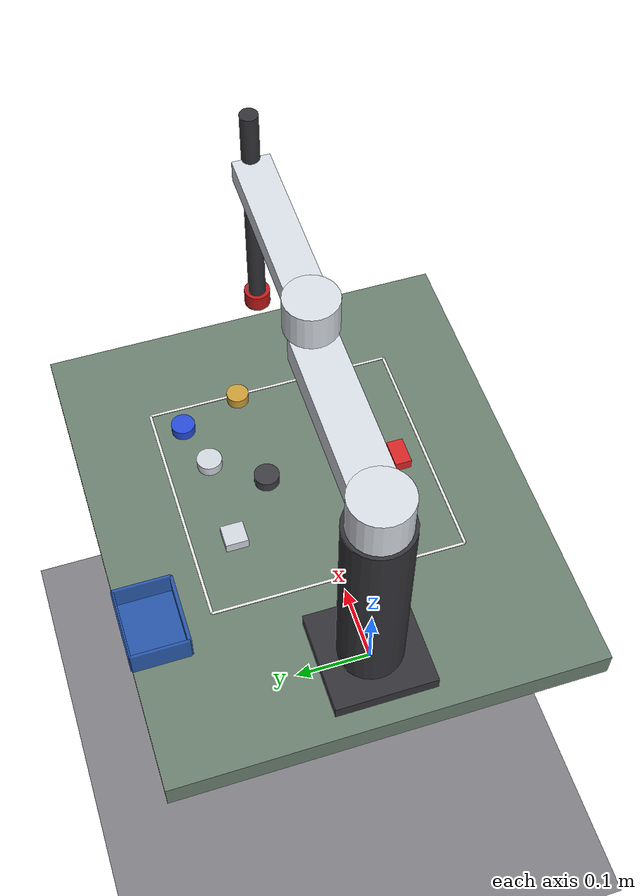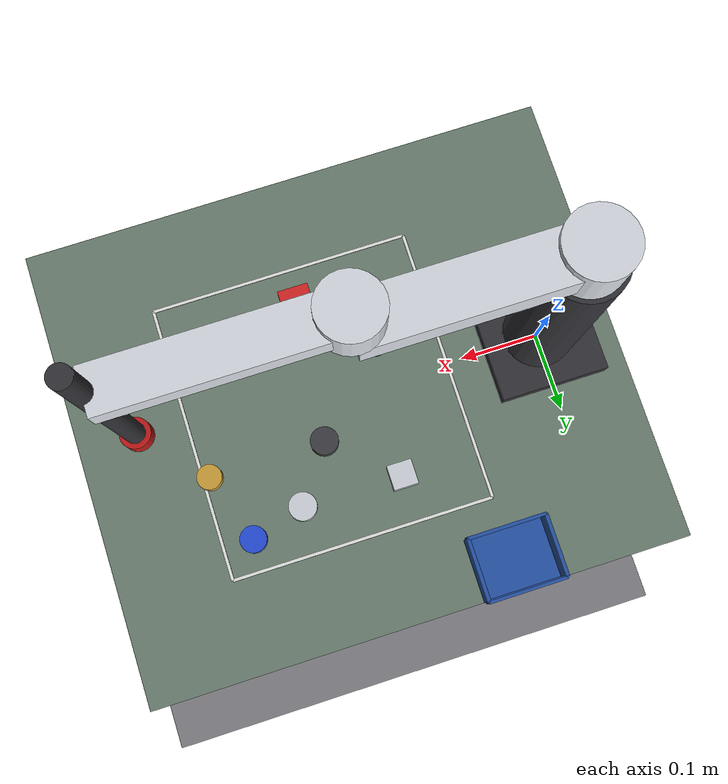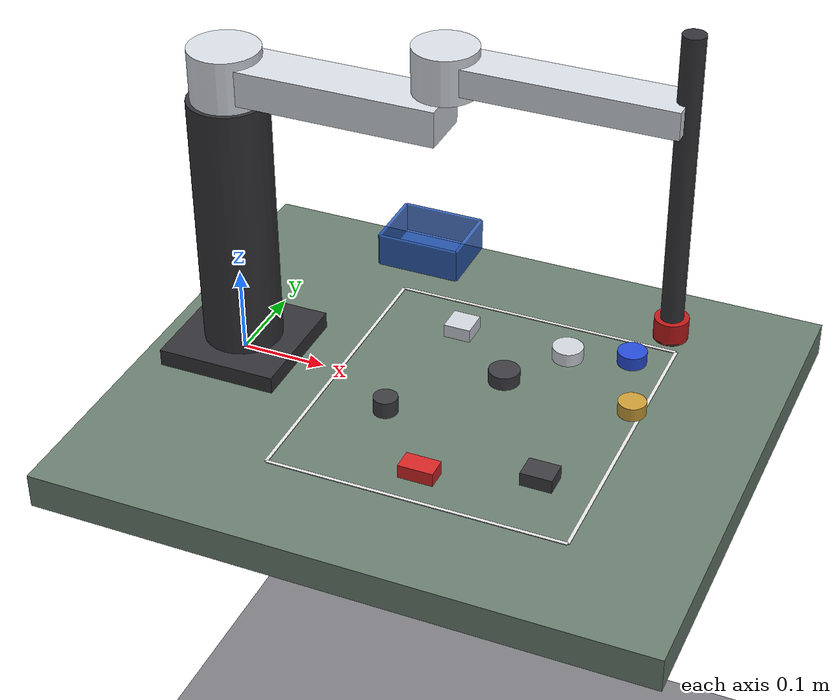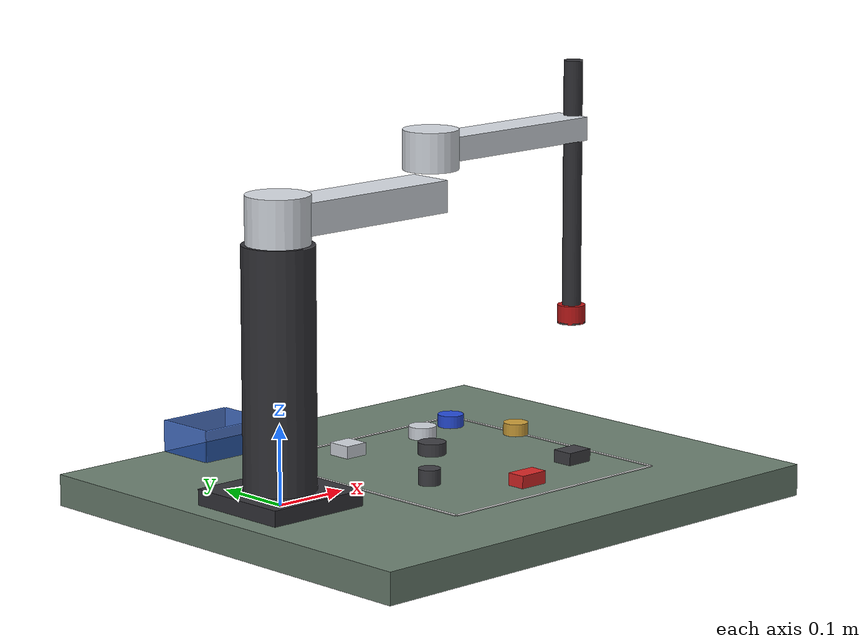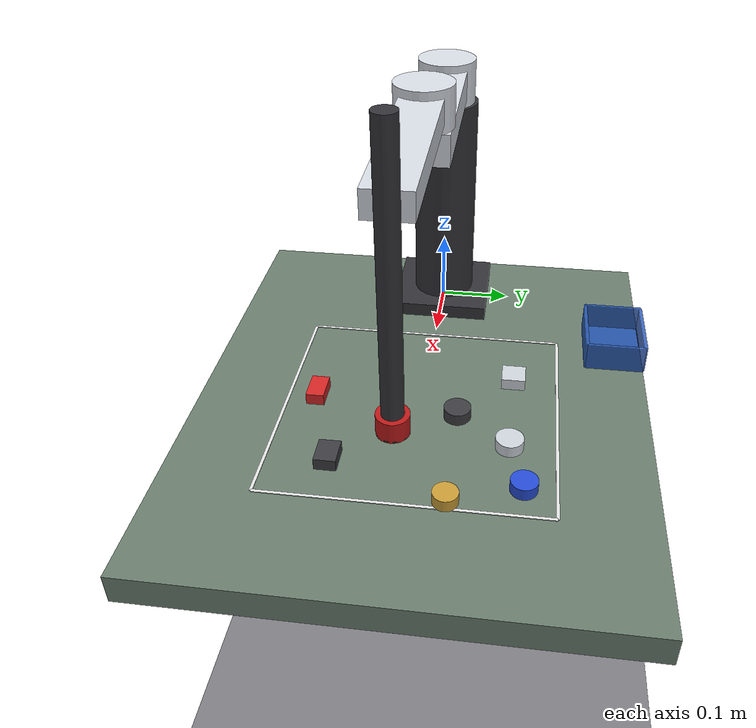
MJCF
<mujoco model="scara_magnet_sort">
  <!-- 3-axis SCARA arm: J1 base yaw, J2 elbow yaw, J3 vertical slide. Electromagnet on the slide tip. -->
  <compiler angle="radian" autolimits="true"/>
  <option timestep="0.002" gravity="0 0 -9.81" integrator="implicitfast"/>

  <visual>
    <headlight ambient="0.25 0.25 0.25" diffuse="0.35 0.35 0.35" specular="0.05 0.05 0.05"/>
    <global offwidth="1280" offheight="960"/>
    <quality shadowsize="4096"/>
  </visual>

  <asset>
    <texture type="skybox" builtin="gradient" rgb1="0.9 0.92 0.95" rgb2="0.6 0.65 0.7" width="256" height="256"/>
    <texture name="table_tex" type="2d" builtin="flat" rgb1="0.42 0.50 0.44" width="64" height="64"/>
    <material name="table_mat" texture="table_tex" reflectance="0.02" specular="0.05" shininess="0.05"/>
    <material name="arm_mat" rgba="0.85 0.87 0.9 1" specular="0.3" shininess="0.4"/>
    <material name="joint_mat" rgba="0.2 0.2 0.22 1"/>
    <material name="magnet_mat" rgba="0.75 0.1 0.1 1" specular="0.5" shininess="0.6"/>
    <material name="bin_mat" rgba="0.15 0.35 0.75 0.85"/>
    <!-- piece materials: the vision model must tell these apart -->
    <material name="iron_mat" rgba="0.24 0.24 0.26 1" specular="0.15" shininess="0.15"/>
    <material name="aluminum_mat" rgba="0.82 0.84 0.87 1" specular="0.9" shininess="0.9" reflectance="0.3"/>
    <material name="brass_mat" rgba="0.80 0.62 0.22 1" specular="0.8" shininess="0.8" reflectance="0.2"/>
    <material name="plastic_red_mat" rgba="0.85 0.15 0.15 1" specular="0.3" shininess="0.5"/>
    <material name="plastic_blue_mat" rgba="0.15 0.3 0.85 1" specular="0.3" shininess="0.5"/>
  </asset>

  <default>
    <joint damping="2"/>
    <geom condim="4" friction="0.9 0.01 0.001" solref="0.005 1" solimp="0.95 0.99 0.001"/>
    <default class="piece">
      <geom mass="0.05" condim="4" friction="1.0 0.02 0.002"/>
      <joint type="free" damping="0"/>
    </default>
    <default class="arm_vis">
      <geom contype="0" conaffinity="0" material="arm_mat"/>
    </default>
  </default>

  <worldbody>
    <light pos="0.3 0 1.5" dir="0 0 -1" directional="false" castshadow="true" diffuse="0.45 0.45 0.45" specular="0.2 0.2 0.2"/>
    <light pos="-0.5 0.5 1.2" dir="0.5 -0.4 -1" directional="false" castshadow="false" diffuse="0.2 0.2 0.2"/>

    <!-- table top surface is z=0; working area x in [0.12,0.46], y in [-0.18,0.18] (reach 0.50) -->
    <geom name="table" type="box" size="0.35 0.30 0.02" pos="0.25 0 -0.02" material="table_mat"/>
    <geom name="floor" type="plane" size="3 3 0.1" pos="0 0 -0.75" rgba="0.5 0.5 0.52 1"/>

    <!-- workspace outline (visual only) -->
    <geom type="box" size="0.17 0.002 0.0005" pos="0.29 -0.18 0.0005" rgba="0.9 0.9 0.9 1" contype="0" conaffinity="0"/>
    <geom type="box" size="0.17 0.002 0.0005" pos="0.29 0.18 0.0005" rgba="0.9 0.9 0.9 1" contype="0" conaffinity="0"/>
    <geom type="box" size="0.002 0.18 0.0005" pos="0.12 0 0.0005" rgba="0.9 0.9 0.9 1" contype="0" conaffinity="0"/>
    <geom type="box" size="0.002 0.18 0.0005" pos="0.46 0 0.0005" rgba="0.9 0.9 0.9 1" contype="0" conaffinity="0"/>

    <!-- iron bin: open box at (0.12, 0.26) -->
    <body name="iron_bin" pos="0.12 0.26 0">
      <geom type="box" size="0.05 0.04 0.002" pos="0 0 0.002" material="bin_mat"/>
      <geom type="box" size="0.05 0.002 0.02" pos="0 -0.04 0.02" material="bin_mat"/>
      <geom type="box" size="0.05 0.002 0.02" pos="0 0.04 0.02" material="bin_mat"/>
      <geom type="box" size="0.002 0.04 0.02" pos="-0.05 0 0.02" material="bin_mat"/>
      <geom type="box" size="0.002 0.04 0.02" pos="0.05 0 0.02" material="bin_mat"/>
      <site name="iron_bin_drop" pos="0 0 0.08" size="0.005" rgba="0 0 1 0"/>
    </body>

    <!-- SCARA arm -->
    <body name="column" pos="0 0 0">
      <geom type="cylinder" size="0.045 0.16" pos="0 0 0.16" material="joint_mat"/>
      <geom type="box" size="0.07 0.07 0.01" pos="0 0 0.01" material="joint_mat"/>
      <body name="link1" pos="0 0 0.32">
        <joint name="j1" type="hinge" axis="0 0 1" range="-2.6 2.6"/>
        <geom type="cylinder" size="0.04 0.03" pos="0 0 0.03" material="arm_mat"/>
        <geom type="box" size="0.125 0.03 0.02" pos="0.125 0 0.03" material="arm_mat"/>
        <body name="link2" pos="0.25 0 0.06">
          <joint name="j2" type="hinge" axis="0 0 1" range="-2.7 2.7"/>
          <geom type="cylinder" size="0.035 0.025" pos="0 0 0.025" material="arm_mat"/>
          <geom type="box" size="0.125 0.025 0.015" pos="0.125 0 0.025" material="arm_mat"/>
          <body name="slide" pos="0.25 0 0">
            <!-- j3: vertical slide. tip z = 0.15 + q3 ; q3 = -0.13 → magnet face on top of a piece -->
            <joint name="j3" type="slide" axis="0 0 1" range="-0.145 0.10" damping="20"/>
            <geom type="cylinder" size="0.012 0.17" pos="0 0 -0.06" material="joint_mat" contype="0" conaffinity="0"/>
            <body name="magnet" pos="0 0 -0.23">
              <geom name="magnet_body" type="cylinder" size="0.018 0.012" pos="0 0 0.012" material="magnet_mat"/>
              <geom name="magnet_face" type="cylinder" size="0.018 0.001" pos="0 0 0.001" rgba="0.3 0.3 0.3 1"/>
              <site name="magnet_tip" pos="0 0 0" size="0.004" rgba="1 0 0 0.6"/>
            </body>
          </body>
        </body>
      </body>
    </body>

    <!-- pieces; positions are randomized at runtime -->
    <body name="piece_iron_1" pos="0.30 0.05 0.01" childclass="piece">
      <joint/>
      <geom type="cylinder" size="0.018 0.008" material="iron_mat"/>
    </body>
    <body name="piece_iron_2" pos="0.40 -0.10 0.01" childclass="piece">
      <joint/>
      <geom type="box" size="0.018 0.014 0.008" material="iron_mat"/>
    </body>
    <body name="piece_iron_3" pos="0.20 -0.05 0.01" childclass="piece">
      <joint/>
      <geom type="cylinder" size="0.014 0.010" material="iron_mat"/>
    </body>
    <body name="piece_aluminum_1" pos="0.35 0.12 0.01" childclass="piece">
      <joint/>
      <geom type="cylinder" size="0.018 0.008" material="aluminum_mat"/>
    </body>
    <body name="piece_aluminum_2" pos="0.22 0.12 0.01" childclass="piece">
      <joint/>
      <geom type="box" size="0.016 0.016 0.008" material="aluminum_mat"/>
    </body>
    <body name="piece_brass_1" pos="0.45 0.05 0.01" childclass="piece">
      <joint/>
      <geom type="cylinder" size="0.016 0.008" material="brass_mat"/>
    </body>
    <body name="piece_plastic_1" pos="0.28 -0.14 0.01" childclass="piece">
      <joint/>
      <geom type="box" size="0.02 0.012 0.008" material="plastic_red_mat"/>
    </body>
    <body name="piece_plastic_2" pos="0.42 0.14 0.01" childclass="piece">
      <joint/>
      <geom type="cylinder" size="0.017 0.008" material="plastic_blue_mat"/>
    </body>

    <!-- simulated cameras -->
    <camera name="overhead" pos="0.29 0.04 0.78" xyaxes="0 -1 0 1 0 0" fovy="45"/>
    <camera name="oblique" pos="0.9 -0.7 0.7" xyaxes="0.6 0.8 0 -0.4 0.3 0.85" fovy="50"/>
  </worldbody>

  <actuator>
    <position name="a1" joint="j1" kp="400" kv="40" ctrlrange="-2.6 2.6"/>
    <position name="a2" joint="j2" kp="250" kv="25" ctrlrange="-2.7 2.7"/>
    <position name="a3" joint="j3" kp="2000" kv="80" ctrlrange="-0.145 0.10"/>
  </actuator>

  <!-- electromagnet: one inactive weld per ferrous piece, switched at runtime -->
  <equality>
    <weld name="mag_piece_iron_1" body1="magnet" body2="piece_iron_1" active="false" solref="0.002 1"/>
    <weld name="mag_piece_iron_2" body1="magnet" body2="piece_iron_2" active="false" solref="0.002 1"/>
    <weld name="mag_piece_iron_3" body1="magnet" body2="piece_iron_3" active="false" solref="0.002 1"/>
  </equality>
</mujoco>
